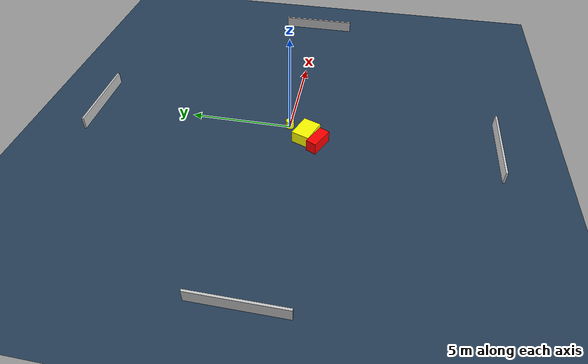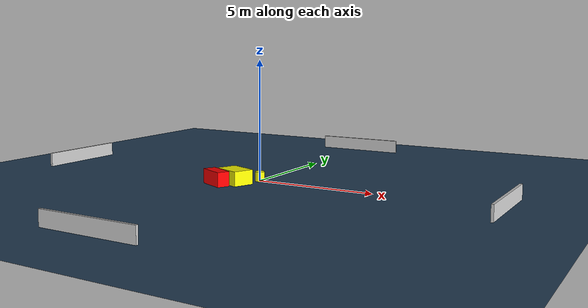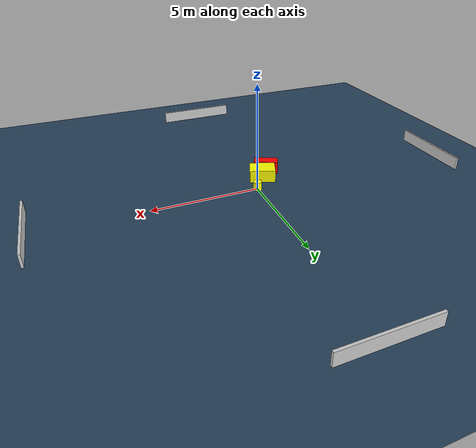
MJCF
<?xml version="1.0" ?>
<mujoco model="generated_environment">
  <option timestep="0.01" integrator="RK4" cone="elliptic"/>
  <default>
    <geom density="1"/>
  </default>
  <asset>
    <texture builtin="gradient" height="3072" name="skybox" rgb1="0.3 0.5 0.7" rgb2="0 0 0" type="skybox" width="512"/>
    <texture builtin="checker" height="300" name="groundplane" rgb1="0.2 0.3 0.4" rgb2="0.1 0.2 0.3" type="2d" width="300"/>
    <material name="groundplane" reflectance="0.2" texrepeat="5 5" texture="groundplane"/>
  </asset>
  <worldbody>
    <light dir="0 0 -1" directional="true" pos="0 0 1.5"/>
    <geom condim="3" friction="0.5 0.005 0.001" material="groundplane" name="floor" pos="0 0 0" size="0 0 0.05" type="plane"/>
    <body name="walls">
      <geom name="wall_1" condim="4" pos="-10.0 0.0 0.3" rgba="0.800000011920929 0.800000011920929 0.800000011920929 1.0" size="0.05 2.0 0.3" type="box"/>
      <geom name="wall_2" condim="4" pos="10.0 0.0 0.3" rgba="0.800000011920929 0.800000011920929 0.800000011920929 1.0" size="0.05 2.0 0.3" type="box"/>
      <geom name="wall_3" condim="4" pos="0.0 -10.0 0.3" rgba="0.800000011920929 0.800000011920929 0.800000011920929 1.0" size="2.0 0.05 0.3" type="box"/>
      <geom name="wall_4" condim="4" pos="0.0 10.0 0.3" rgba="0.800000011920929 0.800000011920929 0.800000011920929 1.0" size="2.0 0.05 0.3" type="box"/>
    </body>
    <body name="robot">
      <joint name="joint_x" type="slide" pos="0 0 0" axis="1 0 0"/>
      <joint name="joint_y" type="slide" pos="0 0 0" axis="0 1 0"/>
      <geom name="robot" type="cylinder" pos="0.0 0.0 0.2" size="0.2 0.2 0.0" mass="5.0" friction="1.0 0.005 0.0001" condim="4" rgba="1.0 1.0 0.0 1.0"/>
    </body>
    <body name="obstacle_1_movable">
      <geom name="obstacle_1_movable" condim="4" pos="-0.6364095470546814 -0.9198420045437744 0.3" euler="0 0 69.15076991289682" friction="0.0 0.005 0.001" rgba="1.0 1.0 0.0 1.0" size="0.4457277080463595 0.6082607559350844 0.3" type="box" mass="0.1"/>
      <joint type="free"/>
    </body>
    <body name="obstacle_2_static">
      <geom name="obstacle_2_static" condim="4" pos="-1.1105699398277808 -1.5480842208122676 0.3" euler="0 0 243.86204271488015" friction="0.0 0.005 0.001" rgba="1.0 0.0 0.0 1.0" size="0.2630647417412315 0.5782379458708196 0.3" type="box"/>
    </body>
  </worldbody>
  <actuator>
    <motor name="actuator_x" joint="joint_x" gear="1" ctrlrange="-1 1"/>
    <motor name="actuator_y" joint="joint_y" gear="1" ctrlrange="-1 1"/>
  </actuator>
</mujoco>
